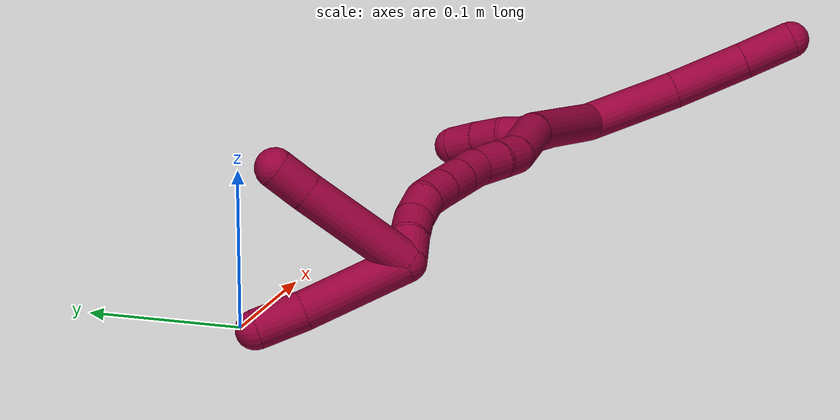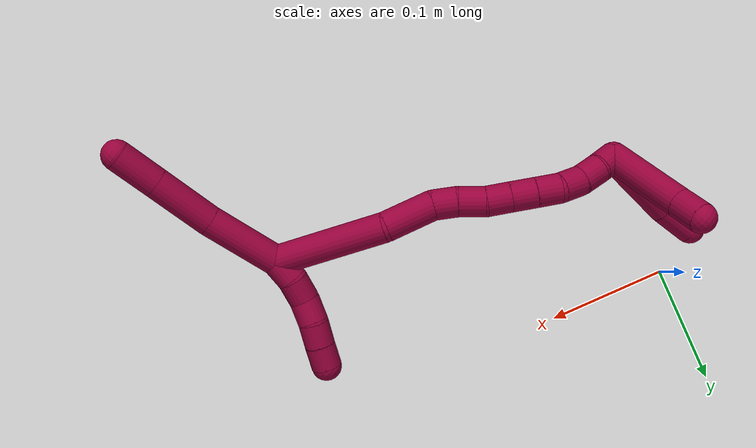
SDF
<sdf version="1.7">
 <world name="default">
  <model name="8">
   <static>0</static>
   <link name="8">
    <collision name="collision-cylinder-e_1_2_8">
     <pose>0.004529 0.002946 0.030814 -0.095308 0.145286 -0.006941</pose>
     <geometry><cylinder><radius>0.0125</radius><length>0.062567</length></cylinder></geometry>
     <surface>
      <friction><ode><mu>1.16</mu><mu2>1.16</mu2><slip1>0</slip1><slip2>0</slip2></ode></friction>
      <contact><ode><kp>1e+06</kp><kd>1</kd><max_vel>0</max_vel><min_depth>0.001</min_depth></ode></contact>
     </surface>
    </collision>
    <visual name="visual-cylinder-e_1_2_8">
     <pose>0.004529 0.002946 0.030814 -0.095308 0.145286 -0.006941</pose>
     <geometry><cylinder><radius>0.0125</radius><length>0.062567</length></cylinder></geometry>
     <material><ambient>0.584314 0 0.227451 1</ambient></material>
    </visual>
    <collision name="collision-cylinder-e_2_8_9">
     <pose>0.010898 0.01041 0.086974 -0.176422 0.071317 -0.00631</pose>
     <geometry><cylinder><radius>0.0125</radius><length>0.051625</length></cylinder></geometry>
     <surface>
      <friction><ode><mu>1.16</mu><mu2>1.16</mu2><slip1>0</slip1><slip2>0</slip2></ode></friction>
      <contact><ode><kp>1e+06</kp><kd>1</kd><max_vel>0</max_vel><min_depth>0.001</min_depth></ode></contact>
     </surface>
    </collision>
    <visual name="visual-cylinder-e_2_8_9">
     <pose>0.010898 0.01041 0.086974 -0.176422 0.071317 -0.00631</pose>
     <geometry><cylinder><radius>0.0125</radius><length>0.051625</length></cylinder></geometry>
     <material><ambient>0.584314 0 0.227451 1</ambient></material>
    </visual>
    <collision name="collision-cylinder-e_3_9_6">
     <pose>0.014064 0.018371 0.129841 -0.194001 0.074189 -0.007222</pose>
     <geometry><cylinder><radius>0.0125</radius><length>0.035808</length></cylinder></geometry>
     <surface>
      <friction><ode><mu>1.16</mu><mu2>1.16</mu2><slip1>0</slip1><slip2>0</slip2></ode></friction>
      <contact><ode><kp>1e+06</kp><kd>1</kd><max_vel>0</max_vel><min_depth>0.001</min_depth></ode></contact>
     </surface>
    </collision>
    <visual name="visual-cylinder-e_3_9_6">
     <pose>0.014064 0.018371 0.129841 -0.194001 0.074189 -0.007222</pose>
     <geometry><cylinder><radius>0.0125</radius><length>0.035808</length></cylinder></geometry>
     <material><ambient>0.584314 0 0.227451 1</ambient></material>
    </visual>
    <collision name="collision-cylinder-e_1_2_10">
     <pose>0.001763 -0.000221 -0.009841 3.1191 0.177259 2.88979</pose>
     <geometry><cylinder><radius>0.0125</radius><length>0.02</length></cylinder></geometry>
     <surface>
      <friction><ode><mu>1.16</mu><mu2>1.16</mu2><slip1>0</slip1><slip2>0</slip2></ode></friction>
      <contact><ode><kp>1e+06</kp><kd>1</kd><max_vel>0</max_vel><min_depth>0.001</min_depth></ode></contact>
     </surface>
    </collision>
    <visual name="visual-cylinder-e_1_2_10">
     <pose>0.001763 -0.000221 -0.009841 3.1191 0.177259 2.88979</pose>
     <geometry><cylinder><radius>0.0125</radius><length>0.02</length></cylinder></geometry>
     <material><ambient>0.584314 0 0.227451 1</ambient></material>
    </visual>
    <collision name="collision-cylinder-e_2_10_11">
     <pose>0.006803 -0.002777 -0.028837 2.89197 0.333784 1.86131</pose>
     <geometry><cylinder><radius>0.0125</radius><length>0.02</length></cylinder></geometry>
     <surface>
      <friction><ode><mu>1.16</mu><mu2>1.16</mu2><slip1>0</slip1><slip2>0</slip2></ode></friction>
      <contact><ode><kp>1e+06</kp><kd>1</kd><max_vel>0</max_vel><min_depth>0.001</min_depth></ode></contact>
     </surface>
    </collision>
    <visual name="visual-cylinder-e_2_10_11">
     <pose>0.006803 -0.002777 -0.028837 2.89197 0.333784 1.86131</pose>
     <geometry><cylinder><radius>0.0125</radius><length>0.02</length></cylinder></geometry>
     <material><ambient>0.584314 0 0.227451 1</ambient></material>
    </visual>
    <collision name="collision-cylinder-e_3_11_12">
     <pose>0.01495 -0.005435 -0.04672 3.10448 0.508716 2.99908</pose>
     <geometry><cylinder><radius>0.0125</radius><length>0.02</length></cylinder></geometry>
     <surface>
      <friction><ode><mu>1.16</mu><mu2>1.16</mu2><slip1>0</slip1><slip2>0</slip2></ode></friction>
      <contact><ode><kp>1e+06</kp><kd>1</kd><max_vel>0</max_vel><min_depth>0.001</min_depth></ode></contact>
     </surface>
    </collision>
    <visual name="visual-cylinder-e_3_11_12">
     <pose>0.01495 -0.005435 -0.04672 3.10448 0.508716 2.99908</pose>
     <geometry><cylinder><radius>0.0125</radius><length>0.02</length></cylinder></geometry>
     <material><ambient>0.584314 0 0.227451 1</ambient></material>
    </visual>
    <collision name="collision-cylinder-e_4_12_13">
     <pose>0.025185 -0.007976 -0.06359 2.87579 0.566247 2.28011</pose>
     <geometry><cylinder><radius>0.0125</radius><length>0.02</length></cylinder></geometry>
     <surface>
      <friction><ode><mu>1.16</mu><mu2>1.16</mu2><slip1>0</slip1><slip2>0</slip2></ode></friction>
      <contact><ode><kp>1e+06</kp><kd>1</kd><max_vel>0</max_vel><min_depth>0.001</min_depth></ode></contact>
     </surface>
    </collision>
    <visual name="visual-cylinder-e_4_12_13">
     <pose>0.025185 -0.007976 -0.06359 2.87579 0.566247 2.28011</pose>
     <geometry><cylinder><radius>0.0125</radius><length>0.02</length></cylinder></geometry>
     <material><ambient>0.584314 0 0.227451 1</ambient></material>
    </visual>
    <collision name="collision-cylinder-e_5_13_5">
     <pose>0.035595 -0.012767 -0.079974 2.83885 0.528905 2.11561</pose>
     <geometry><cylinder><radius>0.0125</radius><length>0.02</length></cylinder></geometry>
     <surface>
      <friction><ode><mu>1.16</mu><mu2>1.16</mu2><slip1>0</slip1><slip2>0</slip2></ode></friction>
      <contact><ode><kp>1e+06</kp><kd>1</kd><max_vel>0</max_vel><min_depth>0.001</min_depth></ode></contact>
     </surface>
    </collision>
    <visual name="visual-cylinder-e_5_13_5">
     <pose>0.035595 -0.012767 -0.079974 2.83885 0.528905 2.11561</pose>
     <geometry><cylinder><radius>0.0125</radius><length>0.02</length></cylinder></geometry>
     <material><ambient>0.584314 0 0.227451 1</ambient></material>
    </visual>
    <collision name="collision-cylinder-e_1_2_14">
     <pose>-0.036213 0.017644 -0.023944 -2.50654 -0.883183 1.92658</pose>
     <geometry><cylinder><radius>0.0125</radius><length>0.093722</length></cylinder></geometry>
     <surface>
      <friction><ode><mu>1.16</mu><mu2>1.16</mu2><slip1>0</slip1><slip2>0</slip2></ode></friction>
      <contact><ode><kp>1e+06</kp><kd>1</kd><max_vel>0</max_vel><min_depth>0.001</min_depth></ode></contact>
     </surface>
    </collision>
    <visual name="visual-cylinder-e_1_2_14">
     <pose>-0.036213 0.017644 -0.023944 -2.50654 -0.883183 1.92658</pose>
     <geometry><cylinder><radius>0.0125</radius><length>0.093722</length></cylinder></geometry>
     <material><ambient>0.584314 0 0.227451 1</ambient></material>
    </visual>
    <collision name="collision-cylinder-e_2_14_15">
     <pose>-0.091259 0.037507 -0.057119 -2.9056 -1.10385 2.7612</pose>
     <geometry><cylinder><radius>0.0125</radius><length>0.042182</length></cylinder></geometry>
     <surface>
      <friction><ode><mu>1.16</mu><mu2>1.16</mu2><slip1>0</slip1><slip2>0</slip2></ode></friction>
      <contact><ode><kp>1e+06</kp><kd>1</kd><max_vel>0</max_vel><min_depth>0.001</min_depth></ode></contact>
     </surface>
    </collision>
    <visual name="visual-cylinder-e_2_14_15">
     <pose>-0.091259 0.037507 -0.057119 -2.9056 -1.10385 2.7612</pose>
     <geometry><cylinder><radius>0.0125</radius><length>0.042182</length></cylinder></geometry>
     <material><ambient>0.584314 0 0.227451 1</ambient></material>
    </visual>
    <collision name="collision-cylinder-e_3_15_16">
     <pose>-0.117228 0.042301 -0.073019 -2.77333 -0.784535 2.29559</pose>
     <geometry><cylinder><radius>0.0125</radius><length>0.0202</length></cylinder></geometry>
     <surface>
      <friction><ode><mu>1.16</mu><mu2>1.16</mu2><slip1>0</slip1><slip2>0</slip2></ode></friction>
      <contact><ode><kp>1e+06</kp><kd>1</kd><max_vel>0</max_vel><min_depth>0.001</min_depth></ode></contact>
     </surface>
    </collision>
    <visual name="visual-cylinder-e_3_15_16">
     <pose>-0.117228 0.042301 -0.073019 -2.77333 -0.784535 2.29559</pose>
     <geometry><cylinder><radius>0.0125</radius><length>0.0202</length></cylinder></geometry>
     <material><ambient>0.584314 0 0.227451 1</ambient></material>
    </visual>
    <collision name="collision-cylinder-e_4_16_17">
     <pose>-0.131223 0.047198 -0.088206 -2.87521 -0.660481 2.39638</pose>
     <geometry><cylinder><radius>0.0125</radius><length>0.022361</length></cylinder></geometry>
     <surface>
      <friction><ode><mu>1.16</mu><mu2>1.16</mu2><slip1>0</slip1><slip2>0</slip2></ode></friction>
      <contact><ode><kp>1e+06</kp><kd>1</kd><max_vel>0</max_vel><min_depth>0.001</min_depth></ode></contact>
     </surface>
    </collision>
    <visual name="visual-cylinder-e_4_16_17">
     <pose>-0.131223 0.047198 -0.088206 -2.87521 -0.660481 2.39638</pose>
     <geometry><cylinder><radius>0.0125</radius><length>0.022361</length></cylinder></geometry>
     <material><ambient>0.584314 0 0.227451 1</ambient></material>
    </visual>
    <collision name="collision-cylinder-e_5_17_18">
     <pose>-0.145675 0.050961 -0.103199 -2.92303 -0.852778 2.66761</pose>
     <geometry><cylinder><radius>0.0125</radius><length>0.020165</length></cylinder></geometry>
     <surface>
      <friction><ode><mu>1.16</mu><mu2>1.16</mu2><slip1>0</slip1><slip2>0</slip2></ode></friction>
      <contact><ode><kp>1e+06</kp><kd>1</kd><max_vel>0</max_vel><min_depth>0.001</min_depth></ode></contact>
     </surface>
    </collision>
    <visual name="visual-cylinder-e_5_17_18">
     <pose>-0.145675 0.050961 -0.103199 -2.92303 -0.852778 2.66761</pose>
     <geometry><cylinder><radius>0.0125</radius><length>0.020165</length></cylinder></geometry>
     <material><ambient>0.584314 0 0.227451 1</ambient></material>
    </visual>
    <collision name="collision-cylinder-e_6_18_19">
     <pose>-0.161094 0.053836 -0.116414 -2.93149 -0.848853 2.68314</pose>
     <geometry><cylinder><radius>0.0125</radius><length>0.020854</length></cylinder></geometry>
     <surface>
      <friction><ode><mu>1.16</mu><mu2>1.16</mu2><slip1>0</slip1><slip2>0</slip2></ode></friction>
      <contact><ode><kp>1e+06</kp><kd>1</kd><max_vel>0</max_vel><min_depth>0.001</min_depth></ode></contact>
     </surface>
    </collision>
    <visual name="visual-cylinder-e_6_18_19">
     <pose>-0.161094 0.053836 -0.116414 -2.93149 -0.848853 2.68314</pose>
     <geometry><cylinder><radius>0.0125</radius><length>0.020854</length></cylinder></geometry>
     <material><ambient>0.584314 0 0.227451 1</ambient></material>
    </visual>
    <collision name="collision-cylinder-e_7_19_20">
     <pose>-0.176648 0.056376 -0.129757 -2.97606 -0.856832 2.78223</pose>
     <geometry><cylinder><radius>0.0125</radius><length>0.020451</length></cylinder></geometry>
     <surface>
      <friction><ode><mu>1.16</mu><mu2>1.16</mu2><slip1>0</slip1><slip2>0</slip2></ode></friction>
      <contact><ode><kp>1e+06</kp><kd>1</kd><max_vel>0</max_vel><min_depth>0.001</min_depth></ode></contact>
     </surface>
    </collision>
    <visual name="visual-cylinder-e_7_19_20">
     <pose>-0.176648 0.056376 -0.129757 -2.97606 -0.856832 2.78223</pose>
     <geometry><cylinder><radius>0.0125</radius><length>0.020451</length></cylinder></geometry>
     <material><ambient>0.584314 0 0.227451 1</ambient></material>
    </visual>
    <collision name="collision-cylinder-e_8_20_21">
     <pose>-0.192786 0.055783 -0.141513 2.82332 -0.998033 -2.56884</pose>
     <geometry><cylinder><radius>0.0125</radius><length>0.020013</length></cylinder></geometry>
     <surface>
      <friction><ode><mu>1.16</mu><mu2>1.16</mu2><slip1>0</slip1><slip2>0</slip2></ode></friction>
      <contact><ode><kp>1e+06</kp><kd>1</kd><max_vel>0</max_vel><min_depth>0.001</min_depth></ode></contact>
     </surface>
    </collision>
    <visual name="visual-cylinder-e_8_20_21">
     <pose>-0.192786 0.055783 -0.141513 2.82332 -0.998033 -2.56884</pose>
     <geometry><cylinder><radius>0.0125</radius><length>0.020013</length></cylinder></geometry>
     <material><ambient>0.584314 0 0.227451 1</ambient></material>
    </visual>
    <collision name="collision-cylinder-e_9_21_22">
     <pose>-0.21058 0.052638 -0.149874 2.71794 -1.21174 -2.53963</pose>
     <geometry><cylinder><radius>0.0125</radius><length>0.020047</length></cylinder></geometry>
     <surface>
      <friction><ode><mu>1.16</mu><mu2>1.16</mu2><slip1>0</slip1><slip2>0</slip2></ode></friction>
      <contact><ode><kp>1e+06</kp><kd>1</kd><max_vel>0</max_vel><min_depth>0.001</min_depth></ode></contact>
     </surface>
    </collision>
    <visual name="visual-cylinder-e_9_21_22">
     <pose>-0.21058 0.052638 -0.149874 2.71794 -1.21174 -2.53963</pose>
     <geometry><cylinder><radius>0.0125</radius><length>0.020047</length></cylinder></geometry>
     <material><ambient>0.584314 0 0.227451 1</ambient></material>
    </visual>
    <collision name="collision-cylinder-e_10_22_1">
     <pose>-0.228931 0.047832 -0.155975 2.28158 -1.11188 -1.86982</pose>
     <geometry><cylinder><radius>0.0125</radius><length>0.020004</length></cylinder></geometry>
     <surface>
      <friction><ode><mu>1.16</mu><mu2>1.16</mu2><slip1>0</slip1><slip2>0</slip2></ode></friction>
      <contact><ode><kp>1e+06</kp><kd>1</kd><max_vel>0</max_vel><min_depth>0.001</min_depth></ode></contact>
     </surface>
    </collision>
    <visual name="visual-cylinder-e_10_22_1">
     <pose>-0.228931 0.047832 -0.155975 2.28158 -1.11188 -1.86982</pose>
     <geometry><cylinder><radius>0.0125</radius><length>0.020004</length></cylinder></geometry>
     <material><ambient>0.584314 0 0.227451 1</ambient></material>
    </visual>
    <collision name="collision-cylinder-e_1_1_23">
     <pose>-0.232339 0.071999 -0.184659 -2.32372 0.146309 -0.335043</pose>
     <geometry><cylinder><radius>0.0125</radius><length>0.076257</length></cylinder></geometry>
     <surface>
      <friction><ode><mu>1.16</mu><mu2>1.16</mu2><slip1>0</slip1><slip2>0</slip2></ode></friction>
      <contact><ode><kp>1e+06</kp><kd>1</kd><max_vel>0</max_vel><min_depth>0.001</min_depth></ode></contact>
     </surface>
    </collision>
    <visual name="visual-cylinder-e_1_1_23">
     <pose>-0.232339 0.071999 -0.184659 -2.32372 0.146309 -0.335043</pose>
     <geometry><cylinder><radius>0.0125</radius><length>0.076257</length></cylinder></geometry>
     <material><ambient>0.584314 0 0.227451 1</ambient></material>
    </visual>
    <collision name="collision-cylinder-e_2_23_4">
     <pose>-0.225053 0.108372 -0.218176 -2.28851 0.146013 -0.31914</pose>
     <geometry><cylinder><radius>0.0125</radius><length>0.023743</length></cylinder></geometry>
     <surface>
      <friction><ode><mu>1.16</mu><mu2>1.16</mu2><slip1>0</slip1><slip2>0</slip2></ode></friction>
      <contact><ode><kp>1e+06</kp><kd>1</kd><max_vel>0</max_vel><min_depth>0.001</min_depth></ode></contact>
     </surface>
    </collision>
    <visual name="visual-cylinder-e_2_23_4">
     <pose>-0.225053 0.108372 -0.218176 -2.28851 0.146013 -0.31914</pose>
     <geometry><cylinder><radius>0.0125</radius><length>0.023743</length></cylinder></geometry>
     <material><ambient>0.584314 0 0.227451 1</ambient></material>
    </visual>
    <collision name="collision-cylinder-e_1_1_24">
     <pose>-0.238221 0.035974 -0.192036 2.89071 -0.009455 -0.074944</pose>
     <geometry><cylinder><radius>0.0125</radius><length>0.068486</length></cylinder></geometry>
     <surface>
      <friction><ode><mu>1.16</mu><mu2>1.16</mu2><slip1>0</slip1><slip2>0</slip2></ode></friction>
      <contact><ode><kp>1e+06</kp><kd>1</kd><max_vel>0</max_vel><min_depth>0.001</min_depth></ode></contact>
     </surface>
    </collision>
    <visual name="visual-cylinder-e_1_1_24">
     <pose>-0.238221 0.035974 -0.192036 2.89071 -0.009455 -0.074944</pose>
     <geometry><cylinder><radius>0.0125</radius><length>0.068486</length></cylinder></geometry>
     <material><ambient>0.584314 0 0.227451 1</ambient></material>
    </visual>
    <collision name="collision-cylinder-e_2_24_3">
     <pose>-0.24014 0.025379 -0.240741 3.00764 -0.101375 -1.29509</pose>
     <geometry><cylinder><radius>0.0125</radius><length>0.031514</length></cylinder></geometry>
     <surface>
      <friction><ode><mu>1.16</mu><mu2>1.16</mu2><slip1>0</slip1><slip2>0</slip2></ode></friction>
      <contact><ode><kp>1e+06</kp><kd>1</kd><max_vel>0</max_vel><min_depth>0.001</min_depth></ode></contact>
     </surface>
    </collision>
    <visual name="visual-cylinder-e_2_24_3">
     <pose>-0.24014 0.025379 -0.240741 3.00764 -0.101375 -1.29509</pose>
     <geometry><cylinder><radius>0.0125</radius><length>0.031514</length></cylinder></geometry>
     <material><ambient>0.584314 0 0.227451 1</ambient></material>
    </visual>
    <collision name="collision-sphere-3">
     <pose>-0.241734 0.023286 -0.256276 0 -0 0</pose>
     <geometry><sphere><radius>0.0125</radius></sphere></geometry>
     <surface>
      <friction><ode><mu>1.16</mu><mu2>1.16</mu2><slip1>0</slip1><slip2>0</slip2></ode></friction>
      <contact><ode><kp>1e+06</kp><kd>1</kd><max_vel>0</max_vel><min_depth>0.001</min_depth></ode></contact>
     </surface>
    </collision>
    <visual name="visual-sphere-3">
     <pose>-0.241734 0.023286 -0.256276 0 -0 0</pose>
     <geometry><sphere><radius>0.0125</radius></sphere></geometry>
     <material><ambient>0.584314 0 0.227451 1</ambient></material>
    </visual>
    <collision name="collision-sphere-24">
     <pose>-0.238545 0.027473 -0.225205 0 -0 0</pose>
     <geometry><sphere><radius>0.0125</radius></sphere></geometry>
     <surface>
      <friction><ode><mu>1.16</mu><mu2>1.16</mu2><slip1>0</slip1><slip2>0</slip2></ode></friction>
      <contact><ode><kp>1e+06</kp><kd>1</kd><max_vel>0</max_vel><min_depth>0.001</min_depth></ode></contact>
     </surface>
    </collision>
    <visual name="visual-sphere-24">
     <pose>-0.238545 0.027473 -0.225205 0 -0 0</pose>
     <geometry><sphere><radius>0.0125</radius></sphere></geometry>
     <material><ambient>0.584314 0 0.227451 1</ambient></material>
    </visual>
    <collision name="collision-sphere-4">
     <pose>-0.223326 0.11722 -0.2259 0 -0 0</pose>
     <geometry><sphere><radius>0.0125</radius></sphere></geometry>
     <surface>
      <friction><ode><mu>1.16</mu><mu2>1.16</mu2><slip1>0</slip1><slip2>0</slip2></ode></friction>
      <contact><ode><kp>1e+06</kp><kd>1</kd><max_vel>0</max_vel><min_depth>0.001</min_depth></ode></contact>
     </surface>
    </collision>
    <visual name="visual-sphere-4">
     <pose>-0.223326 0.11722 -0.2259 0 -0 0</pose>
     <geometry><sphere><radius>0.0125</radius></sphere></geometry>
     <material><ambient>0.584314 0 0.227451 1</ambient></material>
    </visual>
    <collision name="collision-sphere-23">
     <pose>-0.22678 0.099524 -0.210452 0 -0 0</pose>
     <geometry><sphere><radius>0.0125</radius></sphere></geometry>
     <surface>
      <friction><ode><mu>1.16</mu><mu2>1.16</mu2><slip1>0</slip1><slip2>0</slip2></ode></friction>
      <contact><ode><kp>1e+06</kp><kd>1</kd><max_vel>0</max_vel><min_depth>0.001</min_depth></ode></contact>
     </surface>
    </collision>
    <visual name="visual-sphere-23">
     <pose>-0.22678 0.099524 -0.210452 0 -0 0</pose>
     <geometry><sphere><radius>0.0125</radius></sphere></geometry>
     <material><ambient>0.584314 0 0.227451 1</ambient></material>
    </visual>
    <collision name="collision-sphere-1">
     <pose>-0.237898 0.044474 -0.158866 0 -0 0</pose>
     <geometry><sphere><radius>0.0125</radius></sphere></geometry>
     <surface>
      <friction><ode><mu>1.16</mu><mu2>1.16</mu2><slip1>0</slip1><slip2>0</slip2></ode></friction>
      <contact><ode><kp>1e+06</kp><kd>1</kd><max_vel>0</max_vel><min_depth>0.001</min_depth></ode></contact>
     </surface>
    </collision>
    <visual name="visual-sphere-1">
     <pose>-0.237898 0.044474 -0.158866 0 -0 0</pose>
     <geometry><sphere><radius>0.0125</radius></sphere></geometry>
     <material><ambient>0.584314 0 0.227451 1</ambient></material>
    </visual>
    <collision name="collision-sphere-22">
     <pose>-0.219964 0.05119 -0.153085 0 -0 0</pose>
     <geometry><sphere><radius>0.0125</radius></sphere></geometry>
     <surface>
      <friction><ode><mu>1.16</mu><mu2>1.16</mu2><slip1>0</slip1><slip2>0</slip2></ode></friction>
      <contact><ode><kp>1e+06</kp><kd>1</kd><max_vel>0</max_vel><min_depth>0.001</min_depth></ode></contact>
     </surface>
    </collision>
    <visual name="visual-sphere-22">
     <pose>-0.219964 0.05119 -0.153085 0 -0 0</pose>
     <geometry><sphere><radius>0.0125</radius></sphere></geometry>
     <material><ambient>0.584314 0 0.227451 1</ambient></material>
    </visual>
    <collision name="collision-sphere-21">
     <pose>-0.201195 0.054086 -0.146663 0 -0 0</pose>
     <geometry><sphere><radius>0.0125</radius></sphere></geometry>
     <surface>
      <friction><ode><mu>1.16</mu><mu2>1.16</mu2><slip1>0</slip1><slip2>0</slip2></ode></friction>
      <contact><ode><kp>1e+06</kp><kd>1</kd><max_vel>0</max_vel><min_depth>0.001</min_depth></ode></contact>
     </surface>
    </collision>
    <visual name="visual-sphere-21">
     <pose>-0.201195 0.054086 -0.146663 0 -0 0</pose>
     <geometry><sphere><radius>0.0125</radius></sphere></geometry>
     <material><ambient>0.584314 0 0.227451 1</ambient></material>
    </visual>
    <collision name="collision-sphere-11">
     <pose>0.010079 -0.005111 -0.037992 0 -0 0</pose>
     <geometry><sphere><radius>0.0125</radius></sphere></geometry>
     <surface>
      <friction><ode><mu>1.16</mu><mu2>1.16</mu2><slip1>0</slip1><slip2>0</slip2></ode></friction>
      <contact><ode><kp>1e+06</kp><kd>1</kd><max_vel>0</max_vel><min_depth>0.001</min_depth></ode></contact>
     </surface>
    </collision>
    <visual name="visual-sphere-11">
     <pose>0.010079 -0.005111 -0.037992 0 -0 0</pose>
     <geometry><sphere><radius>0.0125</radius></sphere></geometry>
     <material><ambient>0.584314 0 0.227451 1</ambient></material>
    </visual>
    <collision name="collision-sphere-10">
     <pose>0.003527 -0.000443 -0.019682 0 -0 0</pose>
     <geometry><sphere><radius>0.0125</radius></sphere></geometry>
     <surface>
      <friction><ode><mu>1.16</mu><mu2>1.16</mu2><slip1>0</slip1><slip2>0</slip2></ode></friction>
      <contact><ode><kp>1e+06</kp><kd>1</kd><max_vel>0</max_vel><min_depth>0.001</min_depth></ode></contact>
     </surface>
    </collision>
    <visual name="visual-sphere-10">
     <pose>0.003527 -0.000443 -0.019682 0 -0 0</pose>
     <geometry><sphere><radius>0.0125</radius></sphere></geometry>
     <material><ambient>0.584314 0 0.227451 1</ambient></material>
    </visual>
    <collision name="collision-sphere-6">
     <pose>0.015391 0.021813 0.147361 0 -0 0</pose>
     <geometry><sphere><radius>0.0125</radius></sphere></geometry>
     <surface>
      <friction><ode><mu>1.16</mu><mu2>1.16</mu2><slip1>0</slip1><slip2>0</slip2></ode></friction>
      <contact><ode><kp>1e+06</kp><kd>1</kd><max_vel>0</max_vel><min_depth>0.001</min_depth></ode></contact>
     </surface>
    </collision>
    <visual name="visual-sphere-6">
     <pose>0.015391 0.021813 0.147361 0 -0 0</pose>
     <geometry><sphere><radius>0.0125</radius></sphere></geometry>
     <material><ambient>0.584314 0 0.227451 1</ambient></material>
    </visual>
    <collision name="collision-sphere-9">
     <pose>0.012737 0.014929 0.112321 0 -0 0</pose>
     <geometry><sphere><radius>0.0125</radius></sphere></geometry>
     <surface>
      <friction><ode><mu>1.16</mu><mu2>1.16</mu2><slip1>0</slip1><slip2>0</slip2></ode></friction>
      <contact><ode><kp>1e+06</kp><kd>1</kd><max_vel>0</max_vel><min_depth>0.001</min_depth></ode></contact>
     </surface>
    </collision>
    <visual name="visual-sphere-9">
     <pose>0.012737 0.014929 0.112321 0 -0 0</pose>
     <geometry><sphere><radius>0.0125</radius></sphere></geometry>
     <material><ambient>0.584314 0 0.227451 1</ambient></material>
    </visual>
    <collision name="collision-sphere-2">
     <geometry><sphere><radius>0.0125</radius></sphere></geometry>
     <surface>
      <friction><ode><mu>1.16</mu><mu2>1.16</mu2><slip1>0</slip1><slip2>0</slip2></ode></friction>
      <contact><ode><kp>1e+06</kp><kd>1</kd><max_vel>0</max_vel><min_depth>0.001</min_depth></ode></contact>
     </surface>
    </collision>
    <visual name="visual-sphere-2">
     <geometry><sphere><radius>0.0125</radius></sphere></geometry>
     <material><ambient>0.584314 0 0.227451 1</ambient></material>
    </visual>
    <collision name="collision-sphere-19">
     <pose>-0.168919 0.055273 -0.123153 0 -0 0</pose>
     <geometry><sphere><radius>0.0125</radius></sphere></geometry>
     <surface>
      <friction><ode><mu>1.16</mu><mu2>1.16</mu2><slip1>0</slip1><slip2>0</slip2></ode></friction>
      <contact><ode><kp>1e+06</kp><kd>1</kd><max_vel>0</max_vel><min_depth>0.001</min_depth></ode></contact>
     </surface>
    </collision>
    <visual name="visual-sphere-19">
     <pose>-0.168919 0.055273 -0.123153 0 -0 0</pose>
     <geometry><sphere><radius>0.0125</radius></sphere></geometry>
     <material><ambient>0.584314 0 0.227451 1</ambient></material>
    </visual>
    <collision name="collision-sphere-8">
     <pose>0.009058 0.005891 0.061627 0 -0 0</pose>
     <geometry><sphere><radius>0.0125</radius></sphere></geometry>
     <surface>
      <friction><ode><mu>1.16</mu><mu2>1.16</mu2><slip1>0</slip1><slip2>0</slip2></ode></friction>
      <contact><ode><kp>1e+06</kp><kd>1</kd><max_vel>0</max_vel><min_depth>0.001</min_depth></ode></contact>
     </surface>
    </collision>
    <visual name="visual-sphere-8">
     <pose>0.009058 0.005891 0.061627 0 -0 0</pose>
     <geometry><sphere><radius>0.0125</radius></sphere></geometry>
     <material><ambient>0.584314 0 0.227451 1</ambient></material>
    </visual>
    <collision name="collision-sphere-12">
     <pose>0.01982 -0.005759 -0.055448 0 -0 0</pose>
     <geometry><sphere><radius>0.0125</radius></sphere></geometry>
     <surface>
      <friction><ode><mu>1.16</mu><mu2>1.16</mu2><slip1>0</slip1><slip2>0</slip2></ode></friction>
      <contact><ode><kp>1e+06</kp><kd>1</kd><max_vel>0</max_vel><min_depth>0.001</min_depth></ode></contact>
     </surface>
    </collision>
    <visual name="visual-sphere-12">
     <pose>0.01982 -0.005759 -0.055448 0 -0 0</pose>
     <geometry><sphere><radius>0.0125</radius></sphere></geometry>
     <material><ambient>0.584314 0 0.227451 1</ambient></material>
    </visual>
    <collision name="collision-sphere-13">
     <pose>0.03055 -0.010193 -0.071733 0 -0 0</pose>
     <geometry><sphere><radius>0.0125</radius></sphere></geometry>
     <surface>
      <friction><ode><mu>1.16</mu><mu2>1.16</mu2><slip1>0</slip1><slip2>0</slip2></ode></friction>
      <contact><ode><kp>1e+06</kp><kd>1</kd><max_vel>0</max_vel><min_depth>0.001</min_depth></ode></contact>
     </surface>
    </collision>
    <visual name="visual-sphere-13">
     <pose>0.03055 -0.010193 -0.071733 0 -0 0</pose>
     <geometry><sphere><radius>0.0125</radius></sphere></geometry>
     <material><ambient>0.584314 0 0.227451 1</ambient></material>
    </visual>
    <collision name="collision-sphere-5">
     <pose>0.040641 -0.015341 -0.088215 0 -0 0</pose>
     <geometry><sphere><radius>0.0125</radius></sphere></geometry>
     <surface>
      <friction><ode><mu>1.16</mu><mu2>1.16</mu2><slip1>0</slip1><slip2>0</slip2></ode></friction>
      <contact><ode><kp>1e+06</kp><kd>1</kd><max_vel>0</max_vel><min_depth>0.001</min_depth></ode></contact>
     </surface>
    </collision>
    <visual name="visual-sphere-5">
     <pose>0.040641 -0.015341 -0.088215 0 -0 0</pose>
     <geometry><sphere><radius>0.0125</radius></sphere></geometry>
     <material><ambient>0.584314 0 0.227451 1</ambient></material>
    </visual>
    <collision name="collision-sphere-14">
     <pose>-0.072425 0.035288 -0.047888 0 -0 0</pose>
     <geometry><sphere><radius>0.0125</radius></sphere></geometry>
     <surface>
      <friction><ode><mu>1.16</mu><mu2>1.16</mu2><slip1>0</slip1><slip2>0</slip2></ode></friction>
      <contact><ode><kp>1e+06</kp><kd>1</kd><max_vel>0</max_vel><min_depth>0.001</min_depth></ode></contact>
     </surface>
    </collision>
    <visual name="visual-sphere-14">
     <pose>-0.072425 0.035288 -0.047888 0 -0 0</pose>
     <geometry><sphere><radius>0.0125</radius></sphere></geometry>
     <material><ambient>0.584314 0 0.227451 1</ambient></material>
    </visual>
    <collision name="collision-sphere-15">
     <pose>-0.110092 0.039727 -0.066351 0 -0 0</pose>
     <geometry><sphere><radius>0.0125</radius></sphere></geometry>
     <surface>
      <friction><ode><mu>1.16</mu><mu2>1.16</mu2><slip1>0</slip1><slip2>0</slip2></ode></friction>
      <contact><ode><kp>1e+06</kp><kd>1</kd><max_vel>0</max_vel><min_depth>0.001</min_depth></ode></contact>
     </surface>
    </collision>
    <visual name="visual-sphere-15">
     <pose>-0.110092 0.039727 -0.066351 0 -0 0</pose>
     <geometry><sphere><radius>0.0125</radius></sphere></geometry>
     <material><ambient>0.584314 0 0.227451 1</ambient></material>
    </visual>
    <collision name="collision-sphere-16">
     <pose>-0.124363 0.044874 -0.079688 0 -0 0</pose>
     <geometry><sphere><radius>0.0125</radius></sphere></geometry>
     <surface>
      <friction><ode><mu>1.16</mu><mu2>1.16</mu2><slip1>0</slip1><slip2>0</slip2></ode></friction>
      <contact><ode><kp>1e+06</kp><kd>1</kd><max_vel>0</max_vel><min_depth>0.001</min_depth></ode></contact>
     </surface>
    </collision>
    <visual name="visual-sphere-16">
     <pose>-0.124363 0.044874 -0.079688 0 -0 0</pose>
     <geometry><sphere><radius>0.0125</radius></sphere></geometry>
     <material><ambient>0.584314 0 0.227451 1</ambient></material>
    </visual>
    <collision name="collision-sphere-17">
     <pose>-0.138082 0.049522 -0.096724 0 -0 0</pose>
     <geometry><sphere><radius>0.0125</radius></sphere></geometry>
     <surface>
      <friction><ode><mu>1.16</mu><mu2>1.16</mu2><slip1>0</slip1><slip2>0</slip2></ode></friction>
      <contact><ode><kp>1e+06</kp><kd>1</kd><max_vel>0</max_vel><min_depth>0.001</min_depth></ode></contact>
     </surface>
    </collision>
    <visual name="visual-sphere-17">
     <pose>-0.138082 0.049522 -0.096724 0 -0 0</pose>
     <geometry><sphere><radius>0.0125</radius></sphere></geometry>
     <material><ambient>0.584314 0 0.227451 1</ambient></material>
    </visual>
    <collision name="collision-sphere-18">
     <pose>-0.153268 0.052399 -0.109675 0 -0 0</pose>
     <geometry><sphere><radius>0.0125</radius></sphere></geometry>
     <surface>
      <friction><ode><mu>1.16</mu><mu2>1.16</mu2><slip1>0</slip1><slip2>0</slip2></ode></friction>
      <contact><ode><kp>1e+06</kp><kd>1</kd><max_vel>0</max_vel><min_depth>0.001</min_depth></ode></contact>
     </surface>
    </collision>
    <visual name="visual-sphere-18">
     <pose>-0.153268 0.052399 -0.109675 0 -0 0</pose>
     <geometry><sphere><radius>0.0125</radius></sphere></geometry>
     <material><ambient>0.584314 0 0.227451 1</ambient></material>
    </visual>
    <collision name="collision-sphere-20">
     <pose>-0.184376 0.05748 -0.136362 0 -0 0</pose>
     <geometry><sphere><radius>0.0125</radius></sphere></geometry>
     <surface>
      <friction><ode><mu>1.16</mu><mu2>1.16</mu2><slip1>0</slip1><slip2>0</slip2></ode></friction>
      <contact><ode><kp>1e+06</kp><kd>1</kd><max_vel>0</max_vel><min_depth>0.001</min_depth></ode></contact>
     </surface>
    </collision>
    <visual name="visual-sphere-20">
     <pose>-0.184376 0.05748 -0.136362 0 -0 0</pose>
     <geometry><sphere><radius>0.0125</radius></sphere></geometry>
     <material><ambient>0.584314 0 0.227451 1</ambient></material>
    </visual>
    <inertial>
     <pose>-0.105363 0.031601 -0.076976 0 -0 0</pose>
     <mass>0.75</mass>
     <inertia><ixx>9.8e-05</ixx><ixy>0</ixy><ixz>0</ixz><iyy>0.0001</iyy><iyz>0</iyz><izz>-1.7e-05</izz></inertia>
    </inertial>
   </link>
   <pose>0.292128 -0.139799 0.068747 1.39675 -0.14601 0.487843</pose>
  </model>
 </world>
</sdf>
